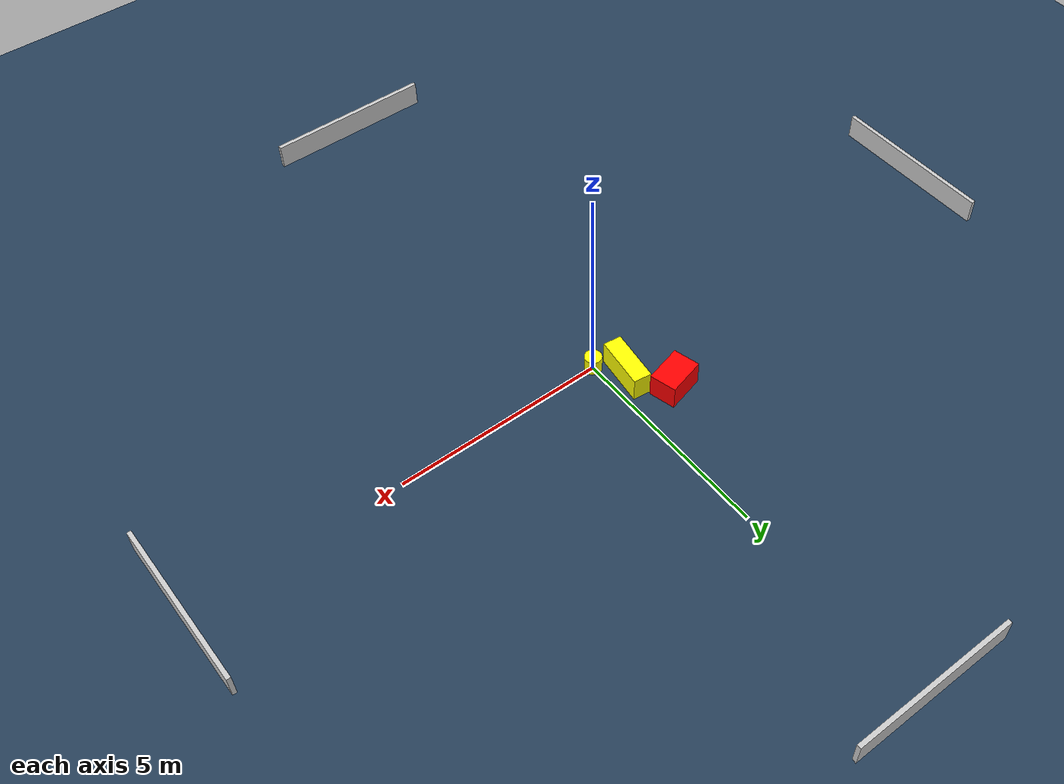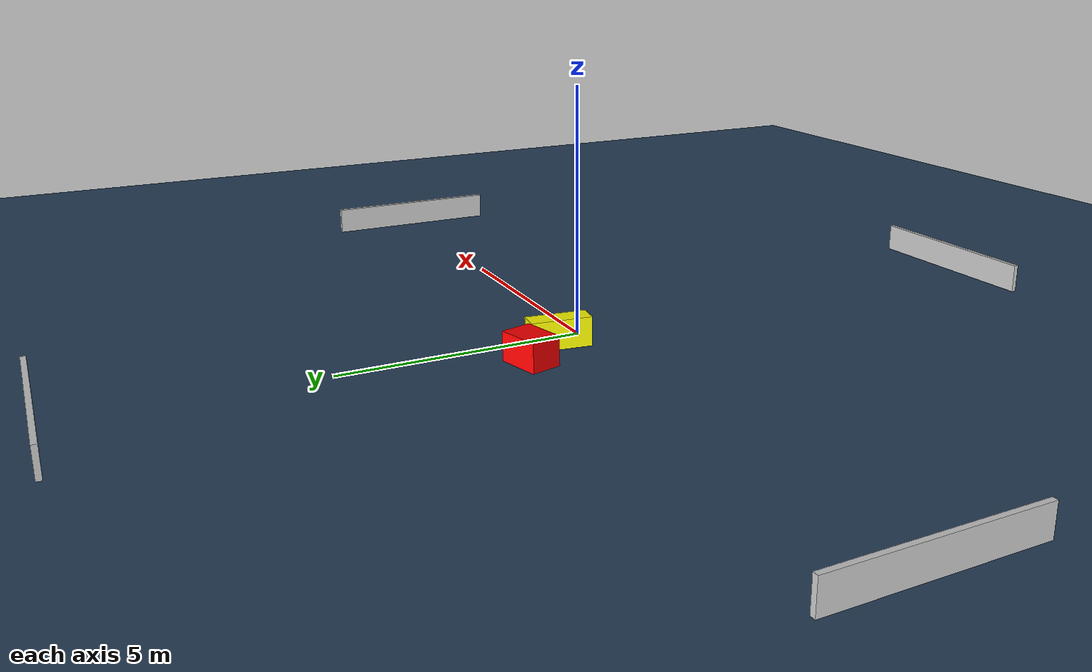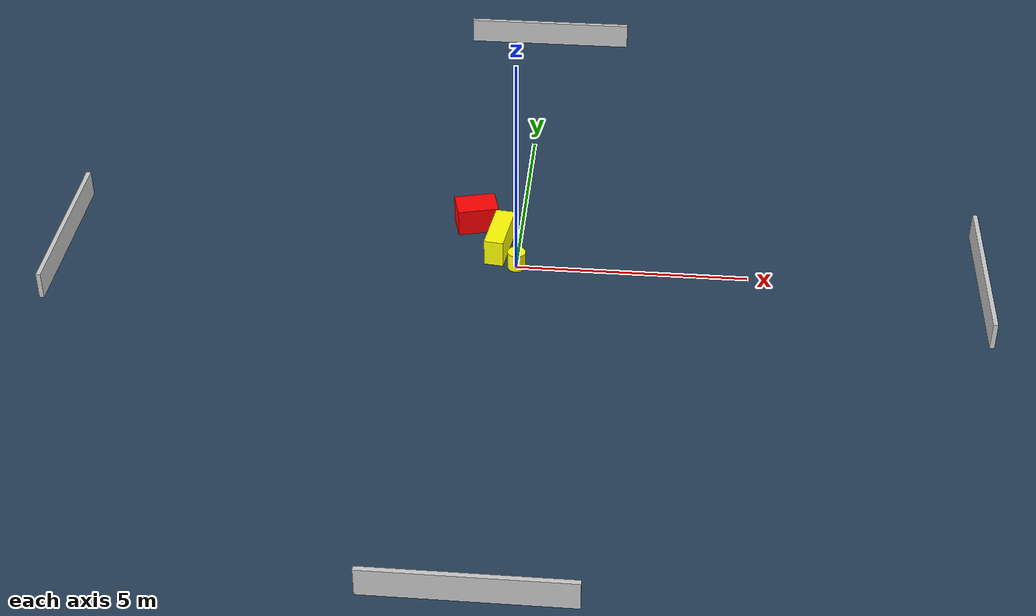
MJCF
<?xml version="1.0" ?>
<mujoco model="generated_environment">
  <option timestep="0.01" integrator="RK4" cone="elliptic"/>
  <default>
    <geom density="1"/>
  </default>
  <asset>
    <texture builtin="gradient" height="3072" name="skybox" rgb1="0.3 0.5 0.7" rgb2="0 0 0" type="skybox" width="512"/>
    <texture builtin="checker" height="300" name="groundplane" rgb1="0.2 0.3 0.4" rgb2="0.1 0.2 0.3" type="2d" width="300"/>
    <material name="groundplane" reflectance="0.2" texrepeat="5 5" texture="groundplane"/>
  </asset>
  <worldbody>
    <light dir="0 0 -1" directional="true" pos="0 0 1.5"/>
    <geom condim="3" friction="0.5 0.005 0.001" material="groundplane" name="floor" pos="0 0 0" size="0 0 0.05" type="plane"/>
    <body name="walls">
      <geom name="wall_1" condim="4" pos="-10.0 0.0 0.3" rgba="0.800000011920929 0.800000011920929 0.800000011920929 1.0" size="0.05 2.0 0.3" type="box"/>
      <geom name="wall_2" condim="4" pos="10.0 0.0 0.3" rgba="0.800000011920929 0.800000011920929 0.800000011920929 1.0" size="0.05 2.0 0.3" type="box"/>
      <geom name="wall_3" condim="4" pos="0.0 -10.0 0.3" rgba="0.800000011920929 0.800000011920929 0.800000011920929 1.0" size="2.0 0.05 0.3" type="box"/>
      <geom name="wall_4" condim="4" pos="0.0 10.0 0.3" rgba="0.800000011920929 0.800000011920929 0.800000011920929 1.0" size="2.0 0.05 0.3" type="box"/>
    </body>
    <body name="robot">
      <joint name="joint_x" type="slide" pos="0 0 0" axis="1 0 0"/>
      <joint name="joint_y" type="slide" pos="0 0 0" axis="0 1 0"/>
      <geom name="robot" type="cylinder" pos="0.0 0.0 0.2" size="0.2 0.2 0.0" mass="5.0" friction="1.0 0.005 0.0001" condim="4" rgba="1.0 1.0 0.0 1.0"/>
    </body>
    <body name="obstacle_1_movable">
      <geom name="obstacle_1_movable" condim="4" pos="-0.4314718044298155 0.6417937286823507 0.3" euler="0 0 352.95133153232746" friction="0.0 0.005 0.001" rgba="1.0 1.0 0.0 1.0" size="0.2133259953099563 0.623423539705158 0.3" type="box" mass="0.1"/>
      <joint type="free"/>
    </body>
    <body name="obstacle_2_static">
      <geom name="obstacle_2_static" condim="4" pos="-1.032814837467653 1.5167991408803285 0.3" euler="0 0 14.589113899461875" friction="0.0 0.005 0.001" rgba="1.0 0.0 0.0 1.0" size="0.4527729036564974 0.3183197552961506 0.3" type="box"/>
    </body>
  </worldbody>
  <actuator>
    <motor name="actuator_x" joint="joint_x" gear="1" ctrlrange="-1 1"/>
    <motor name="actuator_y" joint="joint_y" gear="1" ctrlrange="-1 1"/>
  </actuator>
</mujoco>
